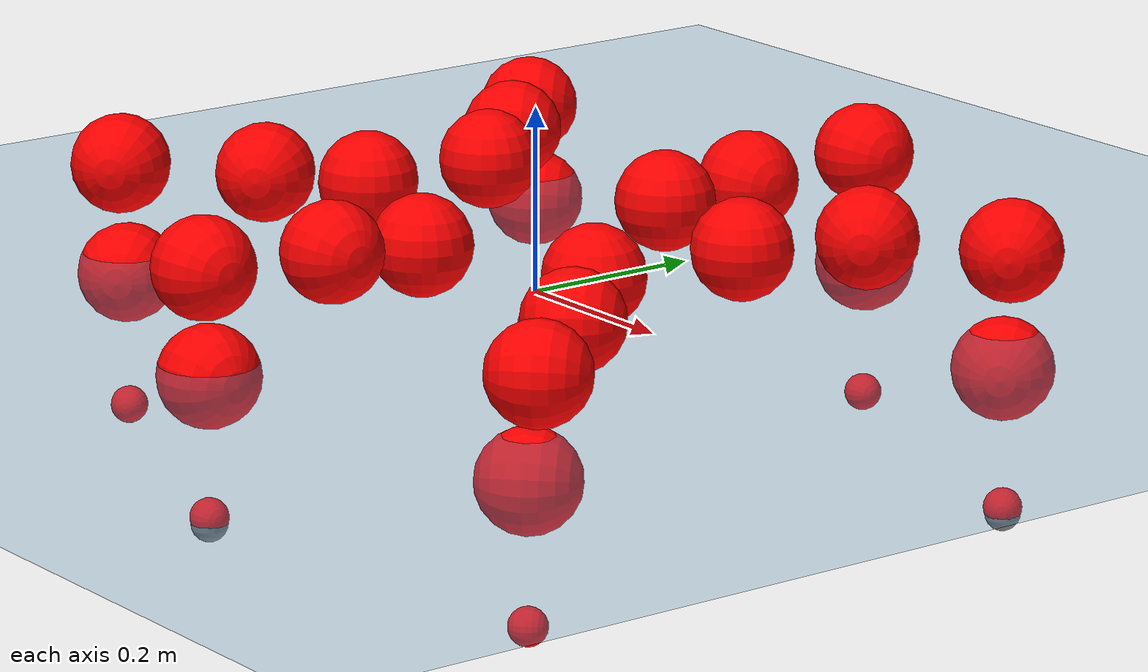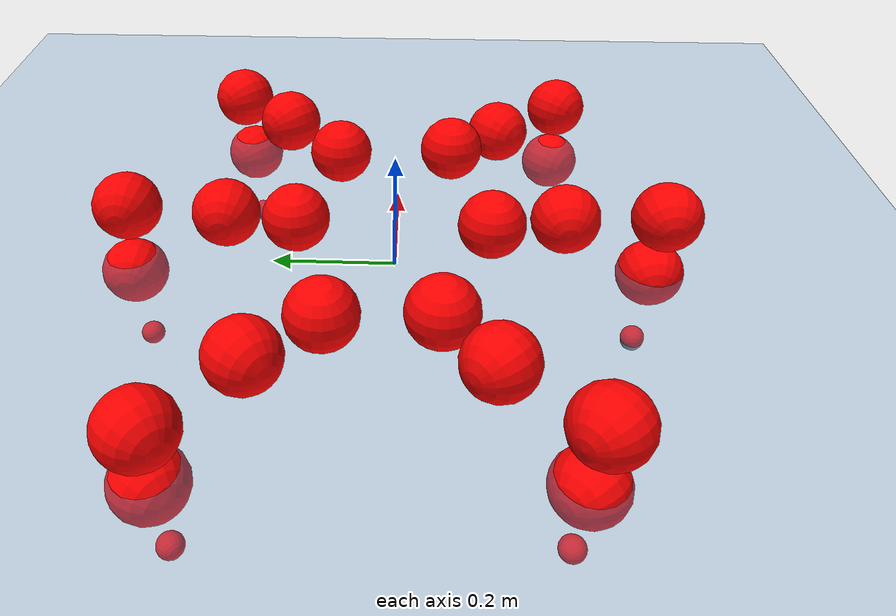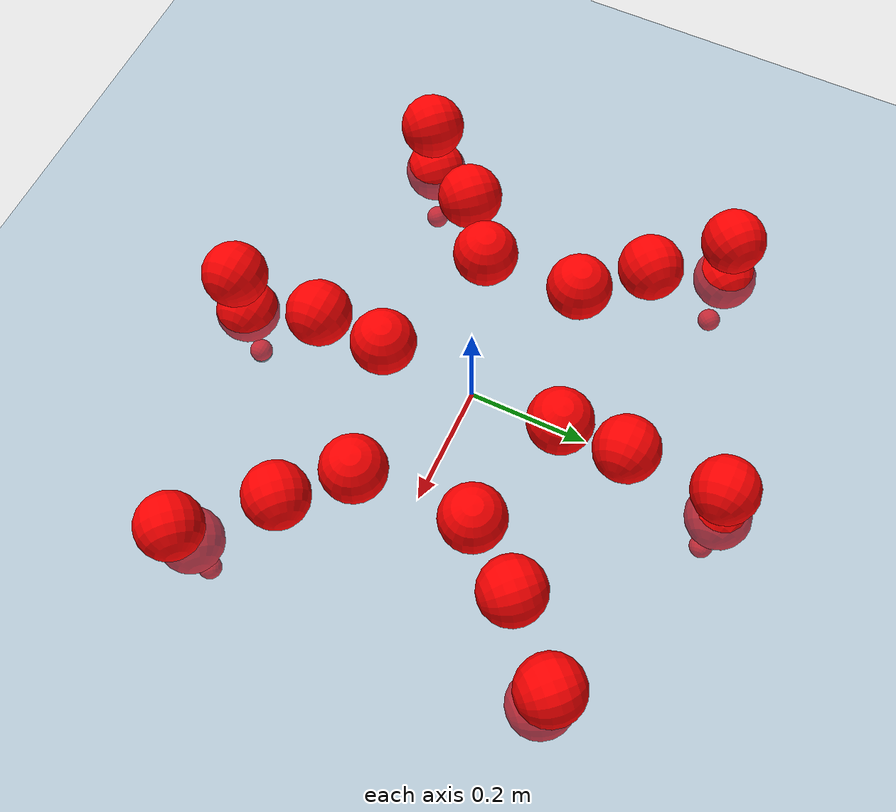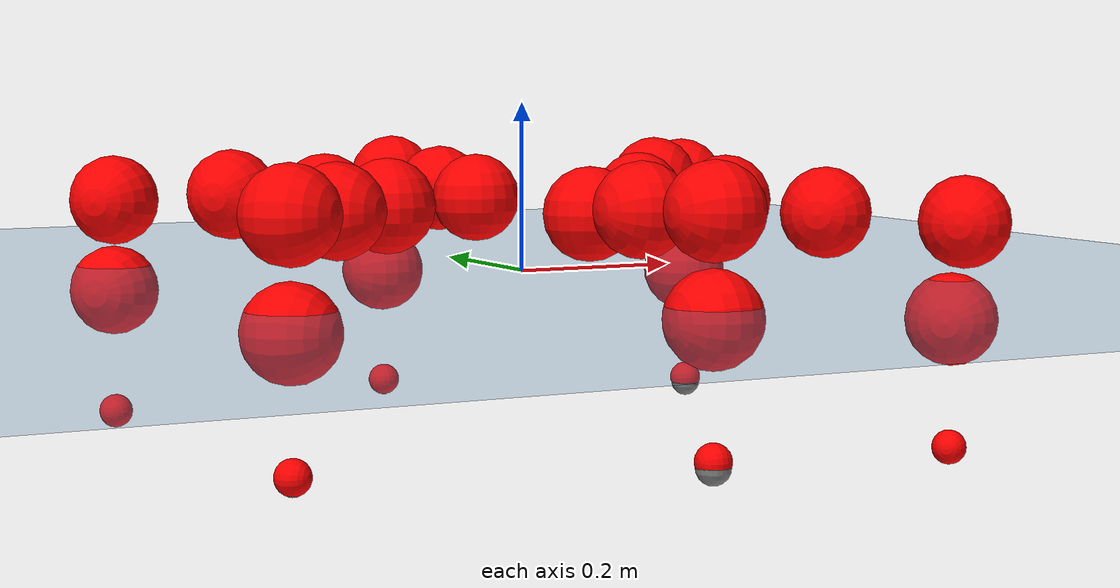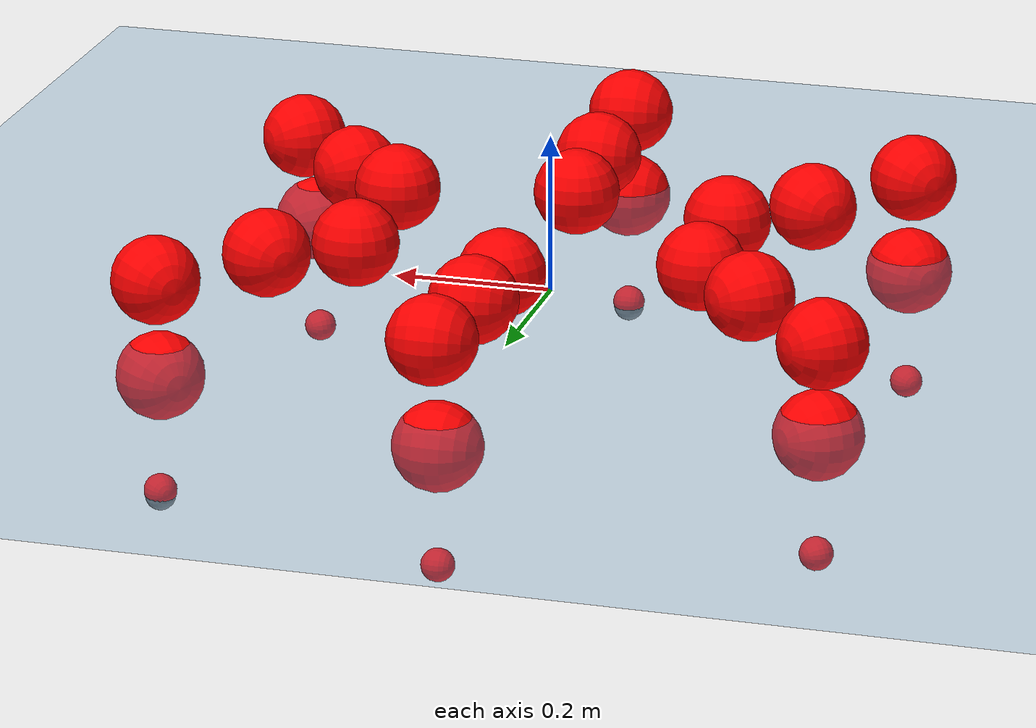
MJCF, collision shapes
<mujoco model="Golem">
  <compiler angle="radian" assetdir="assets" balanceinertia="true" inertiafromgeom="false"/>

  <option timestep="0.005" density="1.2" viscosity="2e-05"/>

  <size nkey="1"/>

  <visual>
    <quality shadowsize="8192"/>
    <map shadowclip="0.5"/>
  </visual>

  <default>
    <default class="/">
      <joint armature="0.01" damping="0.01" frictionloss="0.01"/>
      <geom contype="0" conaffinity="0" group="1" solref="-1000 -80"/>
      <site size="0.01 0.005 0.005" group="5"/>
      <general forcelimited="true" biastype="affine" gainprm="25" biasprm="0 -25 -0.5"/>
      <default class="visual">
        <geom type="mesh" group="2"/>
      </default>
      <default class="collision">
        <geom group="3"/>
      </default>
      <default class="foot">
        <geom size="0.01 0 0" condim="6" group="4" priority="1" solimp="0.015 1 0.01"/>
      </default>
      <default class="reward_collision_sphere">
        <geom group="5" rgba="1 0 0 1"/>
      </default>
    </default>
  </default>

  <asset>
    <texture type="skybox" colorspace="auto" name="//unnamed_texture_0" builtin="gradient" rgb1="0.95 0.95 0.95" rgb2="0.95 0.95 0.95" width="100" height="600"/>
    <texture type="2d" colorspace="auto" name="texplane" builtin="checker" rgb1="0.345 0.575 0.748" rgb2="0.345 0.575 0.748" markrgb="1 1 1" width="512" height="512"/>
    <material name="MatPlane" class="/" texture="texplane" texuniform="true" texrepeat="2 2" specular="0.9"/>
    <mesh name="body" class="/" file="body.stl" scale="0.001 0.001 0.001"/>
    <mesh name="coxa" class="/" file="coxa.stl" scale="0.001 0.001 0.001"/>
    <mesh name="femur" class="/" file="femur.stl" scale="0.001 0.001 0.001"/>
    <mesh name="tibia" class="/" file="tibia.stl" scale="0.001 0.001 0.001"/>
    <mesh name="tarsus" class="/" file="tarsus.stl" scale="0.001 0.001 0.001"/>
  </asset>

  <worldbody>
    <geom name="floor" class="/" size="100 100 0.125" type="plane" group="0" material="MatPlane"/>
    <light name="toplight_shadow" class="/" pos="0 0 5" dir="0.0990148 0.0990148 -0.990148" type="directional" ambient="0.04 0.04 0.04" diffuse="0.55 0.55 0.55" specular="0.12 0.12 0.12"/>
    <light name="toplight_fill" class="/" pos="0 0 5" dir="0.0990148 0.0990148 -0.990148" type="directional" castshadow="false" ambient="0.04 0.04 0.04" diffuse="0.3 0.3 0.3" specular="0.08 0.08 0.08"/>
    <body name="trunk" pos="0.00800919 0.00719968 -0.00206214" quat="0.999996 -0.00110508 0.000359825 -0.00242798">
      <inertial pos="-0.00788675 -0.001305 0.012923" quat="0.999314 0.0190175 -0.0315281 0.00393403" mass="8.61772" diaginertia="0.0486869 0.0547733 0.0247103"/>
      <joint name="//unnamed_joint_0" type="free"/>
      <geom name="//unnamed_geom_1" class="/" pos="0 0 0.079805" quat="1 0 0 0" type="mesh" rgba="0.9 0.9 0.9 1" mesh="body"/>
      <site name="imu" class="/" pos="0.129323 -0.0399082 0.118883" size="0.0135874"/>
      <camera name="track" class="/" pos="0 -2.87112 0" quat="0.707107 0.707107 0 0" mode="trackcom"/>
      <camera name="ego_camera" class="/" pos="0.181183 0 0.124695" quat="-0.5 -0.5 0.5 0.5"/>
      <body name="coxa_RR" pos="-0.243846 -0.108724 0.0905392" quat="0.382535 -0.000901337 -0.00172678 -0.923939">
        <inertial pos="-0.00075714 -0.00157702 -0.00422103" quat="0.999983 -0.00207617 0.00437783 0.00329169" mass="0.484569" diaginertia="0.0554133 0.0585111 0.0341125"/>
        <joint name="coxa_joint_RR" class="/" pos="0 0 0" axis="0.00157368 0.000308893 -0.999999" stiffness="0.00325302" range="-3.11711 3.24187" armature="0.0148998" damping="0.0243921" frictionloss="0.0138691"/>
        <geom name="//unnamed_geom_2" class="/" type="mesh" rgba="0.2 0.2 0.2 1" mesh="coxa"/>
        <geom name="//unnamed_geom_3" class="reward_collision_sphere" size="0.0543497" pos="-0.0418115 0 0"/>
        <body name="femur_RR" pos="0.0735645 -0.0139796 0.00109777" quat="0.500226 -0.499937 0.499288 0.500549">
          <inertial pos="0.0131289 0.00076147 0.0142489" quat="0.997741 -0.0337352 0.0551353 -0.0182978" mass="0.56062" diaginertia="0.0585303 0.0682397 0.0342276"/>
          <joint name="femur_joint_RR" class="/" pos="0 0 0" axis="-0.00103315 0.0300557 -0.999548" range="-3.07201 3.11343" armature="0.0132935" damping="0" frictionloss="0.0143042"/>
          <geom name="//unnamed_geom_4" class="/" type="mesh" rgba="0.9 0.9 0.9 1" mesh="femur"/>
          <geom name="//unnamed_geom_5" class="reward_collision_sphere" size="0.0543497"/>
          <body name="tibia_RR" pos="-0.00644611 -0.156386 0.0128267" quat="-2.01417e-05 1 1.34932e-05 5.7926e-05">
            <inertial pos="0.00103056 0.00086733 0.0109022" quat="0.999365 0.00883629 0.0169931 0.0300369" mass="0.382305" diaginertia="0.0440238 0.0440758 0.0249539"/>
            <joint name="tibia_joint_RR" class="/" pos="0 0 0" axis="-0.0493366 0.0101897 0.99873" stiffness="0.0332841" range="-2.99326 3.13407" armature="0.0175144" damping="0.00989322" frictionloss="0.0200624"/>
            <geom name="//unnamed_geom_6" class="/" type="mesh" rgba="0.2 0.2 0.2 1" mesh="tibia"/>
            <geom name="//unnamed_geom_7" class="reward_collision_sphere" size="0.0543497"/>
            <body name="tarsus_RR" pos="0.122471 -0.00497515 0.00234567" quat="1 -0.000511135 7.7256e-05 4.11142e-05">
              <inertial pos="0.0890113 -0.000378749 0.00151848" quat="0.472526 0.551677 0.503998 0.467288" mass="0.450941" diaginertia="0.0538144 0.0675189 0.0285002"/>
              <joint name="tarsus_joint_RR" class="/" pos="0 0 0" axis="0.0175018 -0.0663165 0.997645" range="-3.13733 3.29628" armature="0.0170826" damping="0.0196638" frictionloss="0.0112841"/>
              <geom name="//unnamed_geom_8" class="/" type="mesh" rgba="0.9 0.9 0.9 1" mesh="tarsus"/>
              <geom name="foot_1" class="foot" size="0.0146238" pos="0.156096 0 0" quat="0 -0.707107 0 0.707107"/>
              <geom name="//unnamed_geom_10" class="reward_collision_sphere" size="0.0543497"/>
              <geom name="//unnamed_geom_11" class="reward_collision_sphere" size="0.0203811" pos="0.149824 0 0"/>
              <site name="foot_1" class="foot" pos="0.156096 0 0" quat="0 -0.707107 0 0.707107" size="0.0135874"/>
            </body>
          </body>
        </body>
      </body>
      <body name="coxa_RM" pos="0.00137072 -0.202461 0.0799246" quat="0.710098 -0.00242124 -0.00482571 -0.704082">
        <inertial pos="0.0101761 0.000779752 0.0119703" quat="0.99894 0.0373349 0.0261051 0.0065309" mass="0.495067" diaginertia="0.0669698 0.0609059 0.0335918"/>
        <joint name="coxa_joint_RM" class="/" pos="0 0 0" axis="0.0121282 0.00286747 -0.999922" range="-3.0947 3.15776" armature="0.0126691" damping="0.0145476" frictionloss="0.0172426"/>
        <geom name="//unnamed_geom_12" class="/" type="mesh" rgba="0.2 0.2 0.2 1" mesh="coxa"/>
        <geom name="//unnamed_geom_13" class="reward_collision_sphere" size="0.0543497" pos="-0.0418115 0 0"/>
        <body name="femur_RM" pos="0.0724398 0.00157005 0.0105699" quat="0.499389 -0.502052 0.501915 0.496625">
          <inertial pos="-0.0122919 0.000983263 0.000140916" quat="0.997886 -0.053415 -0.0197723 0.0312832" mass="0.522685" diaginertia="0.05088 0.069044 0.0309729"/>
          <joint name="femur_joint_RM" class="/" pos="0 0 0" axis="0.0233478 0.0448524 -0.998721" stiffness="0.0352359" range="-3.12529 3.11195" armature="0.010711" damping="0" frictionloss="0.0140399"/>
          <geom name="//unnamed_geom_14" class="/" type="mesh" rgba="0.9 0.9 0.9 1" mesh="femur"/>
          <geom name="//unnamed_geom_15" class="reward_collision_sphere" size="0.0543497"/>
          <body name="tibia_RM" pos="-0.00632363 -0.155634 -0.0021143" quat="9.8648e-05 1 -0.000152849 0.000663348">
            <inertial pos="0.0130631 -0.00502145 0.00730762" quat="0.999967 0.00284081 -0.00405831 -0.00642432" mass="0.440431" diaginertia="0.0444283 0.0651782 0.0336728"/>
            <joint name="tibia_joint_RM" class="/" pos="0 0 0" axis="-0.0290465 0.0277358 0.999193" stiffness="0.0127073" range="-3.13113 3.23704" armature="0.0140303" damping="0.0249902" frictionloss="0.0167877"/>
            <geom name="//unnamed_geom_16" class="/" type="mesh" rgba="0.2 0.2 0.2 1" mesh="tibia"/>
            <geom name="//unnamed_geom_17" class="reward_collision_sphere" size="0.0543497"/>
            <body name="tarsus_RM" pos="0.114009 -0.00516891 -0.00190165" quat="1 -7.52545e-05 4.74519e-06 2.03879e-05">
              <inertial pos="0.0862929 0.00381698 0.000523066" quat="0.492181 0.509004 0.498148 0.500521" mass="0.474042" diaginertia="0.0569782 0.0570571 0.0253495"/>
              <joint name="tarsus_joint_RM" class="/" pos="0 0 0" axis="-0.0225055 -0.0415424 0.998883" range="-3.14158 3.15184" armature="0.0139457" damping="0.00356782" frictionloss="0.0134742"/>
              <geom name="//unnamed_geom_18" class="/" type="mesh" rgba="0.9 0.9 0.9 1" mesh="tarsus"/>
              <geom name="foot_2" class="foot" size="0.0194895" pos="0.156096 0 0" quat="0 -0.707107 0 0.707107"/>
              <geom name="//unnamed_geom_20" class="reward_collision_sphere" size="0.0543497"/>
              <geom name="//unnamed_geom_21" class="reward_collision_sphere" size="0.0203811" pos="0.149824 0 0"/>
              <site name="foot_2" class="foot" pos="0.156096 0 0" quat="0 -0.707107 0 0.707107" size="0.0135874"/>
            </body>
          </body>
        </body>
      </body>
      <body name="coxa_RF" pos="0.24725 -0.130182 0.0851799" quat="0.923918 -0.000176098 -0.000115591 -0.382591">
        <inertial pos="0.0138974 -0.001814 0.000716784" quat="0.998614 0.0026767 0.018469 -0.0492217" mass="0.383427" diaginertia="0.0448311 0.0659392 0.0278773"/>
        <joint name="coxa_joint_RF" class="/" pos="0 0 0" axis="-0.000282921 -0.00300069 -0.999995" range="-3.0341 3.15399" armature="0.00775555" damping="0.0235071" frictionloss="0.0163663"/>
        <geom name="//unnamed_geom_22" class="/" type="mesh" rgba="0.2 0.2 0.2 1" mesh="coxa"/>
        <geom name="//unnamed_geom_23" class="reward_collision_sphere" size="0.0543497" pos="-0.0418115 0 0"/>
        <body name="femur_RF" pos="0.0809327 -0.00333627 -0.012114" quat="0.498635 -0.499551 0.501239 0.500571">
          <inertial pos="-0.00693768 -0.0130103 -0.00654254" quat="0.999999 -0.0012364 0.000489591 -0.00101985" mass="0.562069" diaginertia="0.0481751 0.0699696 0.0309529"/>
          <joint name="femur_joint_RF" class="/" pos="0 0 0" axis="-0.021361 -0.0321159 -0.999256" stiffness="0.0633805" range="-3.17249 3.30244" armature="0.0145414" damping="0" frictionloss="0.0156622"/>
          <geom name="//unnamed_geom_24" class="/" type="mesh" rgba="0.9 0.9 0.9 1" mesh="femur"/>
          <geom name="//unnamed_geom_25" class="reward_collision_sphere" size="0.0543497"/>
          <body name="tibia_RF" pos="0.00605118 -0.164823 -0.00978722" quat="4.0114e-06 1 1.57736e-05 6.24182e-06">
            <inertial pos="0.0116671 0.00868592 -0.0105946" quat="0.999395 -0.00349972 -0.0345034 0.00274922" mass="0.448678" diaginertia="0.05208 0.0611468 0.0306511"/>
            <joint name="tibia_joint_RF" class="/" pos="0 0 0" axis="-0.011777 -0.00165387 0.999929" range="-3.14347 3.31658" armature="0.0134923" damping="0.0774651" frictionloss="0.0136855"/>
            <geom name="//unnamed_geom_26" class="/" type="mesh" rgba="0.2 0.2 0.2 1" mesh="tibia"/>
            <geom name="//unnamed_geom_27" class="reward_collision_sphere" size="0.0543497"/>
            <body name="tarsus_RF" pos="0.112511 -0.0117988 0.0112765" quat="0.999991 -0.00380407 -0.0013404 0.000940467">
              <inertial pos="0.0840009 -0.000117218 -0.000841464" quat="0.507075 0.493528 0.505711 0.493519" mass="0.466873" diaginertia="0.0482178 0.0498898 0.0334265"/>
              <joint name="tarsus_joint_RF" class="/" pos="0 0 0" axis="0.022102 0.00218279 0.999753" stiffness="0.0182481" range="-3.01051 3.16493" armature="0.00713926" damping="0" frictionloss="0.00408907"/>
              <geom name="//unnamed_geom_28" class="/" type="mesh" rgba="0.9 0.9 0.9 1" mesh="tarsus"/>
              <geom name="foot_3" class="foot" size="0.0072994" pos="0.156096 0 0" quat="0 -0.707107 0 0.707107"/>
              <geom name="//unnamed_geom_30" class="reward_collision_sphere" size="0.0543497"/>
              <geom name="//unnamed_geom_31" class="reward_collision_sphere" size="0.0203811" pos="0.149824 0 0"/>
              <site name="foot_3" class="foot" pos="0.156096 0 0" quat="0 -0.707107 0 0.707107" size="0.0135874"/>
            </body>
          </body>
        </body>
      </body>
      <body name="coxa_LR" pos="-0.252194 0.115377 0.0886635" quat="0.379474 0.00105847 -0.00467567 0.92519">
        <inertial pos="0.00152516 -0.00283081 0.0134693" quat="0.998858 0.0201699 -0.0117302 -0.0416863" mass="0.671082" diaginertia="0.0627597 0.0712709 0.0347362"/>
        <joint name="coxa_joint_LR" class="/" pos="0 0 0" axis="0.000272408 -0.00279075 -0.999996" range="-3.06753 2.86682" armature="0.00709009" damping="0" frictionloss="0.0227977"/>
        <geom name="//unnamed_geom_32" class="/" type="mesh" rgba="0.2 0.2 0.2 1" mesh="coxa"/>
        <geom name="//unnamed_geom_33" class="reward_collision_sphere" size="0.0543497" pos="-0.0418115 0 0"/>
        <body name="femur_LR" pos="0.082144 -0.00768969 0.00228359" quat="0.500024 -0.500084 0.499855 0.500038">
          <inertial pos="1.17095e-05 0.000391292 0.000764662" quat="0.999397 -0.024211 -0.00912233 0.0231593" mass="0.546718" diaginertia="0.0606942 0.0545354 0.0325434"/>
          <joint name="femur_joint_LR" class="/" pos="0 0 0" axis="0.00650761 0.0180273 0.999816" stiffness="0.0385315" range="-3.13408 3.3291" armature="0.00837979" damping="0" frictionloss="0.0160653"/>
          <geom name="//unnamed_geom_34" class="/" type="mesh" rgba="0.9 0.9 0.9 1" mesh="femur"/>
          <geom name="//unnamed_geom_35" class="reward_collision_sphere" size="0.0543497"/>
          <body name="tibia_LR" pos="0.010358 -0.1552 0.00358844" quat="0.00105587 0.999989 0.0028284 0.00369798">
            <inertial pos="-0.00770822 -0.0125669 0.0005226" quat="0.99878 -0.0267597 0.0319316 0.0264964" mass="0.55897" diaginertia="0.0435999 0.0533689 0.0353957"/>
            <joint name="tibia_joint_LR" class="/" pos="0 0 0" axis="0.00926539 -0.00656587 -0.999936" range="-3.15983 3.11443" armature="0.0107024" damping="0" frictionloss="0.00892238"/>
            <geom name="//unnamed_geom_36" class="/" type="mesh" rgba="0.2 0.2 0.2 1" mesh="tibia"/>
            <geom name="//unnamed_geom_37" class="reward_collision_sphere" size="0.0543497"/>
            <body name="tarsus_LR" pos="0.111074 0.00432228 0.0060893" quat="0.999996 0.000929074 -0.00131576 0.00221996">
              <inertial pos="0.089679 0.00767198 0.00426011" quat="0.475341 0.507706 0.511802 0.504326" mass="0.599199" diaginertia="0.0633309 0.0731684 0.035632"/>
              <joint name="tarsus_joint_LR" class="/" pos="0 0 0" axis="-0.000521838 0.00549724 -0.999985" range="-3.10491 3.18506" armature="0.023418" damping="0.0160829" frictionloss="0.0165182"/>
              <geom name="//unnamed_geom_38" class="/" type="mesh" rgba="0.9 0.9 0.9 1" mesh="tarsus"/>
              <geom name="foot_4" class="foot" size="0.0122661" pos="0.156096 0 0" quat="0.707107 0 -0.707107 0"/>
              <geom name="//unnamed_geom_40" class="reward_collision_sphere" size="0.0543497"/>
              <geom name="//unnamed_geom_41" class="reward_collision_sphere" size="0.0203811" pos="0.149824 0 0"/>
              <site name="foot_4" class="foot" pos="0.156096 0 0" quat="0.707107 0 -0.707107 0" size="0.0135874"/>
            </body>
          </body>
        </body>
      </body>
      <body name="coxa_LM" pos="0.00816842 0.193596 0.0795957" quat="0.708814 -0.00669912 0.00190374 0.705361">
        <inertial pos="-0.0105132 0.0115676 0.00715887" quat="0.998662 0.0180879 -0.00284763 -0.0483627" mass="0.488643" diaginertia="0.0543611 0.0550616 0.0274284"/>
        <joint name="coxa_joint_LM" class="/" pos="0 0 0" axis="-0.00634662 -0.000783447 -0.99998" range="-3.16065 3.15933" armature="0.00460068" damping="0.0398196" frictionloss="0.0109039"/>
        <geom name="//unnamed_geom_42" class="/" type="mesh" rgba="0.2 0.2 0.2 1" mesh="coxa"/>
        <geom name="//unnamed_geom_43" class="reward_collision_sphere" size="0.0543497" pos="-0.0418115 0 0"/>
        <body name="femur_LM" pos="0.069658 -0.00177727 0.0069746" quat="0.501994 -0.502478 0.498335 0.497172">
          <inertial pos="0.0101406 -0.000617464 0.0116584" quat="0.999358 -0.0281564 -0.0216286 0.00484153" mass="0.383853" diaginertia="0.0483603 0.0537092 0.0269701"/>
          <joint name="femur_joint_LM" class="/" pos="0 0 0" axis="0.00069282 -0.00272645 0.999996" range="-3.2943 3.07198" armature="0.00782877" damping="0.0337234" frictionloss="0.0139017"/>
          <geom name="//unnamed_geom_44" class="/" type="mesh" rgba="0.9 0.9 0.9 1" mesh="femur"/>
          <geom name="//unnamed_geom_45" class="reward_collision_sphere" size="0.0543497"/>
          <body name="tibia_LM" pos="-0.00792864 -0.159492 -0.0016831" quat="-0.000245702 0.999998 -0.00131327 0.00122157">
            <inertial pos="-0.0131862 -0.0138225 -0.0142183" quat="0.999983 0.00558811 0.000738108 0.00174147" mass="0.494916" diaginertia="0.0562134 0.0695277 0.0267025"/>
            <joint name="tibia_joint_LM" class="/" pos="0 0 0" axis="-0.0146631 0.0302972 -0.999433" stiffness="0.0447583" range="-3.20758 3.16469" armature="0.00772121" damping="0" frictionloss="0.0200068"/>
            <geom name="//unnamed_geom_46" class="/" type="mesh" rgba="0.2 0.2 0.2 1" mesh="tibia"/>
            <geom name="//unnamed_geom_47" class="reward_collision_sphere" size="0.0543497"/>
            <body name="tarsus_LM" pos="0.127233 0.0109275 -0.0100072" quat="0.999992 0.0036785 -0.000599148 0.00153884">
              <inertial pos="0.0790224 -0.00512299 -0.00754319" quat="0.500146 0.497868 0.498917 0.503054" mass="0.420464" diaginertia="0.0506426 0.041429 0.0267781"/>
              <joint name="tarsus_joint_LM" class="/" pos="0 0 0" axis="-0.0497335 0.00388936 -0.998755" range="-2.84017 3.11835" armature="0.01297" damping="0" frictionloss="0.0144021"/>
              <geom name="//unnamed_geom_48" class="/" type="mesh" rgba="0.9 0.9 0.9 1" mesh="tarsus"/>
              <geom name="foot_5" class="foot" size="0.014372" pos="0.156096 0 0" quat="0.707107 0 -0.707107 0"/>
              <geom name="//unnamed_geom_50" class="reward_collision_sphere" size="0.0543497"/>
              <geom name="//unnamed_geom_51" class="reward_collision_sphere" size="0.0203811" pos="0.149824 0 0"/>
              <site name="foot_5" class="foot" pos="0.156096 0 0" quat="0.707107 0 -0.707107 0" size="0.0135874"/>
            </body>
          </body>
        </body>
      </body>
      <body name="coxa_LF" pos="0.240022 0.125567 0.0806488" quat="0.924856 0.00201102 -0.00494046 0.38028">
        <inertial pos="-0.000748477 -0.0134793 -0.000785128" quat="0.999999 0.00125912 -0.000147625 0.000238794" mass="0.46789" diaginertia="0.0477225 0.0445437 0.0253486"/>
        <joint name="coxa_joint_LF" class="/" pos="0 0 0" axis="0.0100609 0.0379439 -0.999229" range="-3.11261 3.13236" armature="0.00420004" damping="0.00274483" frictionloss="0.0111527"/>
        <geom name="//unnamed_geom_52" class="/" type="mesh" rgba="0.2 0.2 0.2 1" mesh="coxa"/>
        <geom name="//unnamed_geom_53" class="reward_collision_sphere" size="0.0543497" pos="-0.0418115 0 0"/>
        <body name="femur_LF" pos="0.0863111 0.0149594 0.0125533" quat="0.496633 -0.502631 0.498495 0.502217">
          <inertial pos="-0.00839195 0.00220984 -0.0141892" quat="0.998435 -0.0203196 -0.0407144 -0.0325014" mass="0.499171" diaginertia="0.0578961 0.0501835 0.0304412"/>
          <joint name="femur_joint_LF" class="/" pos="0 0 0" axis="-0.0466189 -0.0115704 0.998846" stiffness="0.0501102" range="-3.16064 3.39895" armature="0.0148345" damping="0.0474257" frictionloss="0.0116164"/>
          <geom name="//unnamed_geom_54" class="/" type="mesh" rgba="0.9 0.9 0.9 1" mesh="femur"/>
          <geom name="//unnamed_geom_55" class="reward_collision_sphere" size="0.0543497"/>
          <body name="tibia_LF" pos="0.00908056 -0.148767 0.00033207" quat="0.00392513 0.999984 -0.00394247 0.00115721">
            <inertial pos="-0.00266762 0.0125724 -0.000148585" quat="0.999967 -0.00791941 0.00132944 -0.000937376" mass="0.501648" diaginertia="0.0574765 0.0617336 0.0319429"/>
            <joint name="tibia_joint_LF" class="/" pos="0 0 0" axis="-0.0524704 0.00114323 -0.998622" stiffness="0.00168018" range="-2.92789 3.13588" armature="0.00852116" damping="0.0124187" frictionloss="0.00546745"/>
            <geom name="//unnamed_geom_56" class="/" type="mesh" rgba="0.2 0.2 0.2 1" mesh="tibia"/>
            <geom name="//unnamed_geom_57" class="reward_collision_sphere" size="0.0543497"/>
            <body name="tarsus_LF" pos="0.125005 -0.00778969 0.00544209" quat="0.999974 0.000686226 -0.00662075 0.00292299">
              <inertial pos="0.0916813 0.00162807 -6.29432e-05" quat="0.498646 0.499816 0.502168 0.499362" mass="0.484159" diaginertia="0.0557616 0.0636835 0.0342602"/>
              <joint name="tarsus_joint_LF" class="/" pos="0 0 0" axis="-0.0585927 -0.0400348 -0.997479" range="-3.22822 3.34827" armature="0.0106539" damping="0.0669015" frictionloss="0.0093107"/>
              <geom name="//unnamed_geom_58" class="/" type="mesh" rgba="0.9 0.9 0.9 1" mesh="tarsus"/>
              <geom name="foot_6" class="foot" size="0.0189758" pos="0.156096 0 0" quat="0.707107 0 -0.707107 0"/>
              <geom name="//unnamed_geom_60" class="reward_collision_sphere" size="0.0543497"/>
              <geom name="//unnamed_geom_61" class="reward_collision_sphere" size="0.0203811" pos="0.149824 0 0"/>
              <site name="foot_6" class="foot" pos="0.156096 0 0" quat="0.707107 0 -0.707107 0" size="0.0135874"/>
            </body>
          </body>
        </body>
      </body>
    </body>
  </worldbody>

  <contact>
    <pair class="/" geom1="floor" geom2="foot_1" name="//unnamed_contact_0"/>
    <pair class="/" geom1="floor" geom2="foot_2" name="//unnamed_contact_1"/>
    <pair class="/" geom1="floor" geom2="foot_3" name="//unnamed_contact_2"/>
    <pair class="/" geom1="floor" geom2="foot_4" name="//unnamed_contact_3"/>
    <pair class="/" geom1="floor" geom2="foot_5" name="//unnamed_contact_4"/>
    <pair class="/" geom1="floor" geom2="foot_6" name="//unnamed_contact_5"/>
  </contact>

  <actuator>
    <general name="coxa_joint_RR" class="/" joint="coxa_joint_RR" forcerange="-14.6421 14.6421" gainprm="29.854" biasprm="0 -29.854 -0.806559"/>
    <general name="femur_joint_RR" class="/" joint="femur_joint_RR" forcerange="-7.74517 7.74517" gainprm="29.854" biasprm="0 -29.854 -0.806559"/>
    <general name="tibia_joint_RR" class="/" joint="tibia_joint_RR" forcerange="-15.0626 15.0626" gainprm="29.854" biasprm="0 -29.854 -0.806559"/>
    <general name="tarsus_joint_RR" class="/" joint="tarsus_joint_RR" forcerange="-7.40822 7.40822" gainprm="29.854" biasprm="0 -29.854 -0.806559"/>
    <general name="coxa_joint_RM" class="/" joint="coxa_joint_RM" forcerange="-10.0525 10.0525" gainprm="29.854" biasprm="0 -29.854 -0.806559"/>
    <general name="femur_joint_RM" class="/" joint="femur_joint_RM" forcerange="-9.73781 9.73781" gainprm="29.854" biasprm="0 -29.854 -0.806559"/>
    <general name="tibia_joint_RM" class="/" joint="tibia_joint_RM" forcerange="-14.2471 14.2471" gainprm="29.854" biasprm="0 -29.854 -0.806559"/>
    <general name="tarsus_joint_RM" class="/" joint="tarsus_joint_RM" forcerange="-4.93022 4.93022" gainprm="29.854" biasprm="0 -29.854 -0.806559"/>
    <general name="coxa_joint_RF" class="/" joint="coxa_joint_RF" forcerange="-8.98155 8.98155" gainprm="29.854" biasprm="0 -29.854 -0.806559"/>
    <general name="femur_joint_RF" class="/" joint="femur_joint_RF" forcerange="-9.7182 9.7182" gainprm="29.854" biasprm="0 -29.854 -0.806559"/>
    <general name="tibia_joint_RF" class="/" joint="tibia_joint_RF" forcerange="-5.31422 5.31422" gainprm="29.854" biasprm="0 -29.854 -0.806559"/>
    <general name="tarsus_joint_RF" class="/" joint="tarsus_joint_RF" forcerange="-7.83172 7.83172" gainprm="29.854" biasprm="0 -29.854 -0.806559"/>
    <general name="coxa_joint_LR" class="/" joint="coxa_joint_LR" forcerange="-10.1768 10.1768" gainprm="29.854" biasprm="0 -29.854 -0.806559"/>
    <general name="femur_joint_LR" class="/" joint="femur_joint_LR" forcerange="-13.7417 13.7417" gainprm="29.854" biasprm="0 -29.854 -0.806559"/>
    <general name="tibia_joint_LR" class="/" joint="tibia_joint_LR" forcerange="-11.9694 11.9694" gainprm="29.854" biasprm="0 -29.854 -0.806559"/>
    <general name="tarsus_joint_LR" class="/" joint="tarsus_joint_LR" forcerange="-12.9731 12.9731" gainprm="29.854" biasprm="0 -29.854 -0.806559"/>
    <general name="coxa_joint_LM" class="/" joint="coxa_joint_LM" forcerange="-11.9713 11.9713" gainprm="29.854" biasprm="0 -29.854 -0.806559"/>
    <general name="femur_joint_LM" class="/" joint="femur_joint_LM" forcerange="-11.19 11.19" gainprm="29.854" biasprm="0 -29.854 -0.806559"/>
    <general name="tibia_joint_LM" class="/" joint="tibia_joint_LM" forcerange="-13.2799 13.2799" gainprm="29.854" biasprm="0 -29.854 -0.806559"/>
    <general name="tarsus_joint_LM" class="/" joint="tarsus_joint_LM" forcerange="-10.8097 10.8097" gainprm="29.854" biasprm="0 -29.854 -0.806559"/>
    <general name="coxa_joint_LF" class="/" joint="coxa_joint_LF" forcerange="-11.5983 11.5983" gainprm="29.854" biasprm="0 -29.854 -0.806559"/>
    <general name="femur_joint_LF" class="/" joint="femur_joint_LF" forcerange="-8.78488 8.78488" gainprm="29.854" biasprm="0 -29.854 -0.806559"/>
    <general name="tibia_joint_LF" class="/" joint="tibia_joint_LF" forcerange="-6.81449 6.81449" gainprm="29.854" biasprm="0 -29.854 -0.806559"/>
    <general name="tarsus_joint_LF" class="/" joint="tarsus_joint_LF" forcerange="-11.9047 11.9047" gainprm="29.854" biasprm="0 -29.854 -0.806559"/>
  </actuator>

  <sensor>
    <gyro site="imu" name="imu_angular_velocity"/>
    <velocimeter site="imu" name="imu_linear_velocity"/>
    <framelinvel objtype="site" objname="foot_1" name="foot_1_global_linear_velocity"/>
    <framelinvel objtype="site" objname="foot_2" name="foot_2_global_linear_velocity"/>
    <framelinvel objtype="site" objname="foot_3" name="foot_3_global_linear_velocity"/>
    <framelinvel objtype="site" objname="foot_4" name="foot_4_global_linear_velocity"/>
    <framelinvel objtype="site" objname="foot_5" name="foot_5_global_linear_velocity"/>
    <framelinvel objtype="site" objname="foot_6" name="foot_6_global_linear_velocity"/>
  </sensor>

  <keyframe>
    <key name="home" qpos="0 0 0.1457 1 0 0 0 0 0 0 0 0 0 0 0 0 0 0 0 0 0 0 0 0 0 0 0 0 0 0 0"/>
  </keyframe>
</mujoco>
